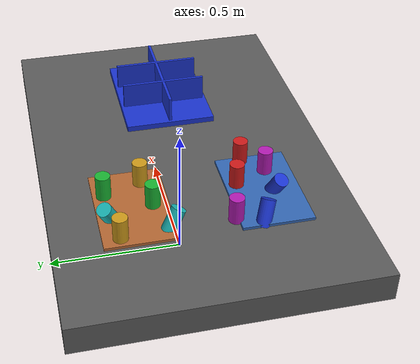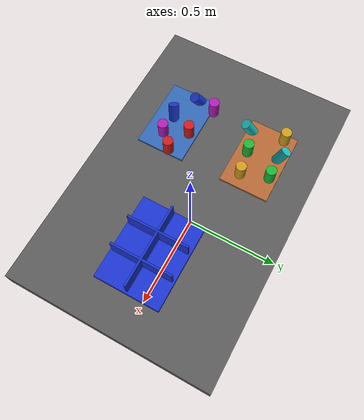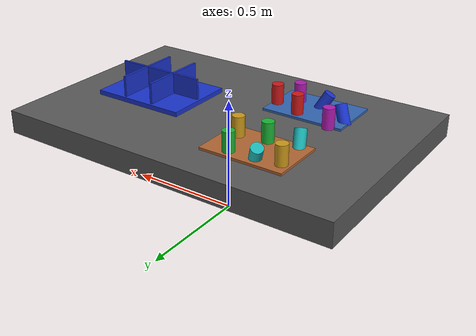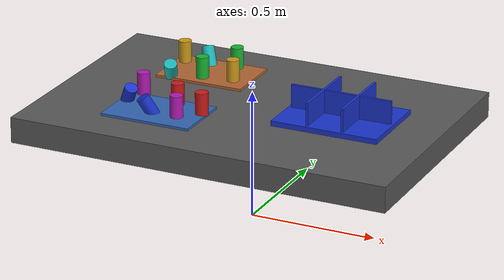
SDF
<?xml version="1.0" ?>
<sdf version="1.9">
  <!-- Standalone M1B scene.  The controller-backed Panda is spawned by the
       existing launch path; this file never alters the frozen M1A cube world. -->
  <world name="industrial_cylinder_v1">
    <physics name="bullet" type="bullet"><max_step_size>0.001</max_step_size><real_time_factor>1.0</real_time_factor></physics>
    <plugin name="gz::sim::systems::Physics" filename="gz-sim-physics-system"><engine><filename>gz-physics-bullet-featherstone-plugin</filename></engine></plugin>
    <plugin name="gz::sim::systems::UserCommands" filename="gz-sim-user-commands-system"/>
    <plugin name="gz::sim::systems::SceneBroadcaster" filename="gz-sim-scene-broadcaster-system"/>
    <plugin name="gz::sim::systems::Sensors" filename="gz-sim-sensors-system"><render_engine>ogre2</render_engine></plugin>
    <gravity>0 0 -9.81</gravity>
    <light type="directional" name="industrial_light"><pose>0 0 5 0 0 0</pose><direction>-0.3 0.2 -0.9</direction><diffuse>0.9 0.9 0.9 1</diffuse></light>
    <model name="industrial_work_table"><static>true</static><link name="link"><pose>0 0 0.4 0 0 0</pose><collision name="collision"><geometry><box><size>1.5 1.0 0.1</size></box></geometry></collision><visual name="visual"><geometry><box><size>1.5 1.0 0.1</size></box></geometry><material><diffuse>0.35 0.35 0.35 1</diffuse></material></visual></link></model>
    <model name="camera_fixture"><static>true</static><link name="camera_rgbd"><pose>-0.80 -0.80 1.40 0 0.77 0.93</pose><sensor name="front_rgbd" type="rgbd_camera"><always_on>1</always_on><update_rate>15</update_rate><topic>/xh/camera/rgbd</topic><camera><horizontal_fov>1.047</horizontal_fov><image><width>640</width><height>480</height><format>R8G8B8</format></image><clip><near>0.1</near><far>4.0</far></clip></camera></sensor></link></model>
    <model name="incoming_zone_a"><static>true</static><link name="link"><pose>-0.28 -0.22 0.455 0 0 0</pose><visual name="visual"><geometry><box><size>0.36 0.24 0.01</size></box></geometry><material><diffuse>0.2 0.4 0.7 1</diffuse></material></visual></link></model>
    <model name="incoming_zone_b"><static>true</static><link name="link"><pose>-0.28 0.22 0.455 0 0 0</pose><visual name="visual"><geometry><box><size>0.36 0.24 0.01</size></box></geometry><material><diffuse>0.7 0.4 0.2 1</diffuse></material></visual></link></model>
    <!-- M1B_RANDOM_PARTS_BEGIN -->
    <model name="cylinder_01"><pose>-0.1201 -0.1831 0.5000 0.0000 0.0000 -1.5517</pose><link name="link"><inertial><mass>0.06</mass></inertial><collision name="collision"><geometry><cylinder><radius>0.025</radius><length>0.09</length></cylinder></geometry></collision><visual name="visual"><geometry><cylinder><radius>0.025</radius><length>0.09</length></cylinder></geometry><material><diffuse>0.800 0.100 0.100 1</diffuse><specular>0.15 0.15 0.15 1</specular></material></visual></link></model>
    <model name="cylinder_02"><pose>-0.2098 0.3026 0.5000 3.1416 0.0000 -1.6891</pose><link name="link"><inertial><mass>0.06</mass></inertial><collision name="collision"><geometry><cylinder><radius>0.025</radius><length>0.09</length></cylinder></geometry></collision><visual name="visual"><geometry><cylinder><radius>0.025</radius><length>0.09</length></cylinder></geometry><material><diffuse>0.100 0.700 0.200 1</diffuse><specular>0.15 0.15 0.15 1</specular></material></visual></link></model>
    <model name="cylinder_03"><pose>-0.4249 -0.1832 0.4800 0.4500 -0.3000 1.5094</pose><link name="link"><inertial><mass>0.06</mass></inertial><collision name="collision"><geometry><cylinder><radius>0.025</radius><length>0.09</length></cylinder></geometry></collision><visual name="visual"><geometry><cylinder><radius>0.025</radius><length>0.09</length></cylinder></geometry><material><diffuse>0.100 0.200 0.800 1</diffuse><specular>0.15 0.15 0.15 1</specular></material></visual></link></model>
    <model name="cylinder_04"><pose>-0.4241 0.2817 0.5000 0.0000 0.0000 -2.0005</pose><link name="link"><inertial><mass>0.06</mass></inertial><collision name="collision"><geometry><cylinder><radius>0.025</radius><length>0.09</length></cylinder></geometry></collision><visual name="visual"><geometry><cylinder><radius>0.025</radius><length>0.09</length></cylinder></geometry><material><diffuse>0.800 0.600 0.100 1</diffuse><specular>0.15 0.15 0.15 1</specular></material></visual></link></model>
    <model name="cylinder_05"><pose>-0.1900 -0.2502 0.5000 3.1416 0.0000 0.3887</pose><link name="link"><inertial><mass>0.06</mass></inertial><collision name="collision"><geometry><cylinder><radius>0.025</radius><length>0.09</length></cylinder></geometry></collision><visual name="visual"><geometry><cylinder><radius>0.025</radius><length>0.09</length></cylinder></geometry><material><diffuse>0.700 0.100 0.700 1</diffuse><specular>0.15 0.15 0.15 1</specular></material></visual></link></model>
    <model name="cylinder_06"><pose>-0.3297 0.3036 0.4800 0.4500 -0.3000 -1.8200</pose><link name="link"><inertial><mass>0.06</mass></inertial><collision name="collision"><geometry><cylinder><radius>0.025</radius><length>0.09</length></cylinder></geometry></collision><visual name="visual"><geometry><cylinder><radius>0.025</radius><length>0.09</length></cylinder></geometry><material><diffuse>0.100 0.700 0.700 1</diffuse><specular>0.15 0.15 0.15 1</specular></material></visual></link></model>
    <model name="cylinder_07"><pose>-0.2420 -0.1379 0.5000 0.0000 0.0000 2.1715</pose><link name="link"><inertial><mass>0.06</mass></inertial><collision name="collision"><geometry><cylinder><radius>0.025</radius><length>0.09</length></cylinder></geometry></collision><visual name="visual"><geometry><cylinder><radius>0.025</radius><length>0.09</length></cylinder></geometry><material><diffuse>0.800 0.100 0.100 1</diffuse><specular>0.15 0.15 0.15 1</specular></material></visual></link></model>
    <model name="cylinder_08"><pose>-0.2854 0.1535 0.5000 3.1416 0.0000 2.9765</pose><link name="link"><inertial><mass>0.06</mass></inertial><collision name="collision"><geometry><cylinder><radius>0.025</radius><length>0.09</length></cylinder></geometry></collision><visual name="visual"><geometry><cylinder><radius>0.025</radius><length>0.09</length></cylinder></geometry><material><diffuse>0.100 0.700 0.200 1</diffuse><specular>0.15 0.15 0.15 1</specular></material></visual></link></model>
    <model name="cylinder_09"><pose>-0.3021 -0.2547 0.4800 0.4500 -0.3000 -0.5380</pose><link name="link"><inertial><mass>0.06</mass></inertial><collision name="collision"><geometry><cylinder><radius>0.025</radius><length>0.09</length></cylinder></geometry></collision><visual name="visual"><geometry><cylinder><radius>0.025</radius><length>0.09</length></cylinder></geometry><material><diffuse>0.100 0.200 0.800 1</diffuse><specular>0.15 0.15 0.15 1</specular></material></visual></link></model>
    <model name="cylinder_10"><pose>-0.1654 0.1734 0.5000 0.0000 0.0000 2.9415</pose><link name="link"><inertial><mass>0.06</mass></inertial><collision name="collision"><geometry><cylinder><radius>0.025</radius><length>0.09</length></cylinder></geometry></collision><visual name="visual"><geometry><cylinder><radius>0.025</radius><length>0.09</length></cylinder></geometry><material><diffuse>0.800 0.600 0.100 1</diffuse><specular>0.15 0.15 0.15 1</specular></material></visual></link></model>
    <model name="cylinder_11"><pose>-0.4092 -0.0914 0.5000 3.1416 0.0000 -1.6146</pose><link name="link"><inertial><mass>0.06</mass></inertial><collision name="collision"><geometry><cylinder><radius>0.025</radius><length>0.09</length></cylinder></geometry></collision><visual name="visual"><geometry><cylinder><radius>0.025</radius><length>0.09</length></cylinder></geometry><material><diffuse>0.700 0.100 0.700 1</diffuse><specular>0.15 0.15 0.15 1</specular></material></visual></link></model>
    <model name="cylinder_12"><pose>-0.3988 0.1114 0.4800 0.4500 -0.3000 0.9571</pose><link name="link"><inertial><mass>0.06</mass></inertial><collision name="collision"><geometry><cylinder><radius>0.025</radius><length>0.09</length></cylinder></geometry></collision><visual name="visual"><geometry><cylinder><radius>0.025</radius><length>0.09</length></cylinder></geometry><material><diffuse>0.100 0.700 0.700 1</diffuse><specular>0.15 0.15 0.15 1</specular></material></visual></link></model>
    <!-- M1B_RANDOM_PARTS_END -->
    <model name="blue_partition_bin"><static>true</static><pose>0.36 0 0.45 0 0 0</pose><link name="link"><collision name="floor"><pose>0 0 0.01 0 0 0</pose><geometry><box><size>0.42 0.32 0.02</size></box></geometry></collision><visual name="floor_visual"><pose>0 0 0.01 0 0 0</pose><geometry><box><size>0.42 0.32 0.02</size></box></geometry><material><diffuse>0.1 0.2 0.8 1</diffuse></material></visual><visual name="row_divider"><pose>0 0 0.06 0 0 0</pose><geometry><box><size>0.40 0.01 0.10</size></box></geometry><material><diffuse>0.1 0.2 0.8 1</diffuse></material></visual><visual name="col_divider_a"><pose>-0.07 0 0.06 0 0 0</pose><geometry><box><size>0.01 0.30 0.10</size></box></geometry><material><diffuse>0.1 0.2 0.8 1</diffuse></material></visual><visual name="col_divider_b"><pose>0.07 0 0.06 0 0 0</pose><geometry><box><size>0.01 0.30 0.10</size></box></geometry><material><diffuse>0.1 0.2 0.8 1</diffuse></material></visual></link></model>
    <!-- Reserved only: second table, bin transport corridor, stackable-bin
         collision volume, and second arm mounting namespace. -->
  </world>
</sdf>
